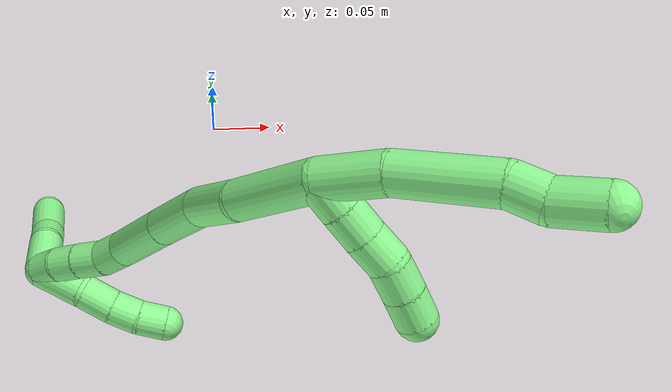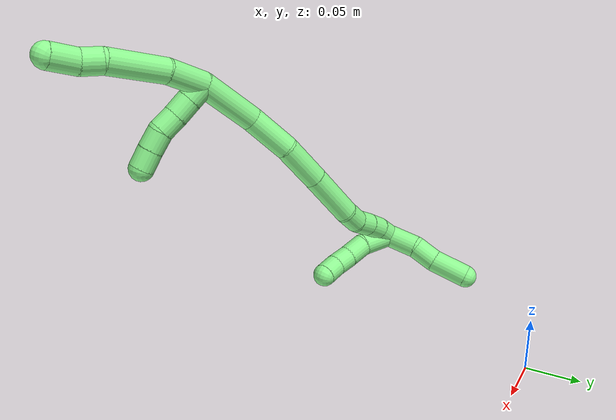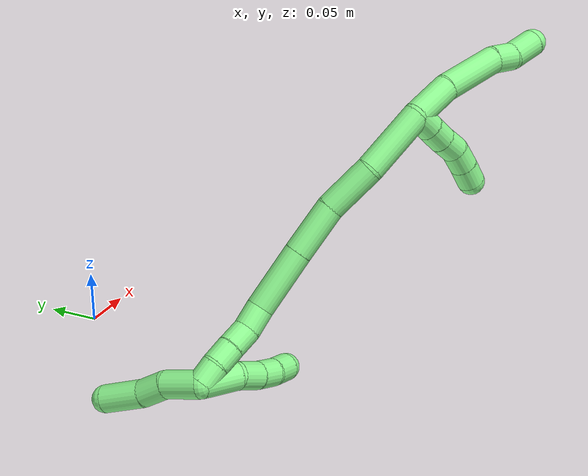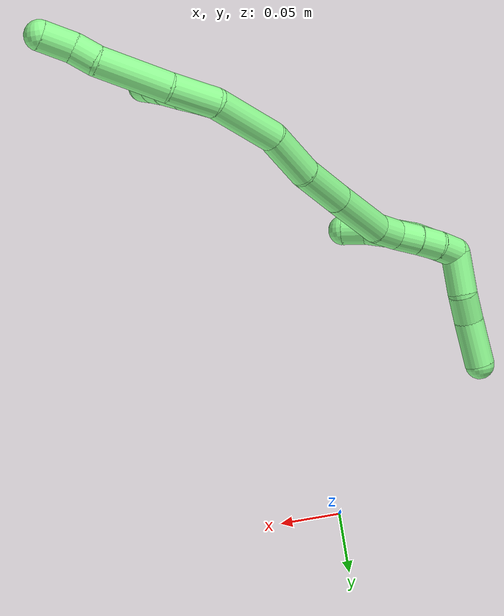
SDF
<sdf version="1.7">
 <world name="default">
  <model name="13">
   <static>0</static>
   <link name="13">
    <collision name="collision-cylinder-e_1_2_8">
     <pose>0.011287 0.014372 0.009188 -1.002 0.584556 -0.326606</pose>
     <geometry><cylinder><radius>0.0125</radius><length>0.040909</length></cylinder></geometry>
     <surface>
      <friction><ode><mu>1.16</mu><mu2>1.16</mu2><slip1>0</slip1><slip2>0</slip2></ode></friction>
      <contact><ode><kp>1e+06</kp><kd>1</kd><max_vel>0</max_vel><min_depth>0.001</min_depth></ode></contact>
     </surface>
    </collision>
    <visual name="visual-cylinder-e_1_2_8">
     <pose>0.011287 0.014372 0.009188 -1.002 0.584556 -0.326606</pose>
     <geometry><cylinder><radius>0.0125</radius><length>0.040909</length></cylinder></geometry>
     <material><ambient>0.564706 0.984314 0.572549 1</ambient></material>
    </visual>
    <collision name="collision-cylinder-e_2_8_9">
     <pose>0.042423 0.045523 0.03342 -0.839844 0.722088 -0.334035</pose>
     <geometry><cylinder><radius>0.0125</radius><length>0.060059</length></cylinder></geometry>
     <surface>
      <friction><ode><mu>1.16</mu><mu2>1.16</mu2><slip1>0</slip1><slip2>0</slip2></ode></friction>
      <contact><ode><kp>1e+06</kp><kd>1</kd><max_vel>0</max_vel><min_depth>0.001</min_depth></ode></contact>
     </surface>
    </collision>
    <visual name="visual-cylinder-e_2_8_9">
     <pose>0.042423 0.045523 0.03342 -0.839844 0.722088 -0.334035</pose>
     <geometry><cylinder><radius>0.0125</radius><length>0.060059</length></cylinder></geometry>
     <material><ambient>0.564706 0.984314 0.572549 1</ambient></material>
    </visual>
    <collision name="collision-cylinder-e_3_9_10">
     <pose>0.069757 0.065365 0.055043 -0.435858 0.800891 -0.186938</pose>
     <geometry><cylinder><radius>0.0125</radius><length>0.020854</length></cylinder></geometry>
     <surface>
      <friction><ode><mu>1.16</mu><mu2>1.16</mu2><slip1>0</slip1><slip2>0</slip2></ode></friction>
      <contact><ode><kp>1e+06</kp><kd>1</kd><max_vel>0</max_vel><min_depth>0.001</min_depth></ode></contact>
     </surface>
    </collision>
    <visual name="visual-cylinder-e_3_9_10">
     <pose>0.069757 0.065365 0.055043 -0.435858 0.800891 -0.186938</pose>
     <geometry><cylinder><radius>0.0125</radius><length>0.020854</length></cylinder></geometry>
     <material><ambient>0.564706 0.984314 0.572549 1</ambient></material>
    </visual>
    <collision name="collision-cylinder-e_4_10_6">
     <pose>0.086203 0.07672 0.068658 -0.867024 0.689172 -0.329252</pose>
     <geometry><cylinder><radius>0.0125</radius><length>0.028178</length></cylinder></geometry>
     <surface>
      <friction><ode><mu>1.16</mu><mu2>1.16</mu2><slip1>0</slip1><slip2>0</slip2></ode></friction>
      <contact><ode><kp>1e+06</kp><kd>1</kd><max_vel>0</max_vel><min_depth>0.001</min_depth></ode></contact>
     </surface>
    </collision>
    <visual name="visual-cylinder-e_4_10_6">
     <pose>0.086203 0.07672 0.068658 -0.867024 0.689172 -0.329252</pose>
     <geometry><cylinder><radius>0.0125</radius><length>0.028178</length></cylinder></geometry>
     <material><ambient>0.564706 0.984314 0.572549 1</ambient></material>
    </visual>
    <collision name="collision-cylinder-e_1_2_11">
     <pose>0.008925 -0.003558 0.002771 0.9091 1.10292 0.584003</pose>
     <geometry><cylinder><radius>0.0125</radius><length>0.02</length></cylinder></geometry>
     <surface>
      <friction><ode><mu>1.16</mu><mu2>1.16</mu2><slip1>0</slip1><slip2>0</slip2></ode></friction>
      <contact><ode><kp>1e+06</kp><kd>1</kd><max_vel>0</max_vel><min_depth>0.001</min_depth></ode></contact>
     </surface>
    </collision>
    <visual name="visual-cylinder-e_1_2_11">
     <pose>0.008925 -0.003558 0.002771 0.9091 1.10292 0.584003</pose>
     <geometry><cylinder><radius>0.0125</radius><length>0.02</length></cylinder></geometry>
     <material><ambient>0.564706 0.984314 0.572549 1</ambient></material>
    </visual>
    <collision name="collision-cylinder-e_2_11_12">
     <pose>0.026866 -0.010633 0.008063 0.948901 1.12328 0.625139</pose>
     <geometry><cylinder><radius>0.0125</radius><length>0.02</length></cylinder></geometry>
     <surface>
      <friction><ode><mu>1.16</mu><mu2>1.16</mu2><slip1>0</slip1><slip2>0</slip2></ode></friction>
      <contact><ode><kp>1e+06</kp><kd>1</kd><max_vel>0</max_vel><min_depth>0.001</min_depth></ode></contact>
     </surface>
    </collision>
    <visual name="visual-cylinder-e_2_11_12">
     <pose>0.026866 -0.010633 0.008063 0.948901 1.12328 0.625139</pose>
     <geometry><cylinder><radius>0.0125</radius><length>0.02</length></cylinder></geometry>
     <material><ambient>0.564706 0.984314 0.572549 1</ambient></material>
    </visual>
    <collision name="collision-cylinder-e_3_12_13">
     <pose>0.04497 -0.01716 0.013471 0.806359 1.14062 0.534106</pose>
     <geometry><cylinder><radius>0.0125</radius><length>0.02</length></cylinder></geometry>
     <surface>
      <friction><ode><mu>1.16</mu><mu2>1.16</mu2><slip1>0</slip1><slip2>0</slip2></ode></friction>
      <contact><ode><kp>1e+06</kp><kd>1</kd><max_vel>0</max_vel><min_depth>0.001</min_depth></ode></contact>
     </surface>
    </collision>
    <visual name="visual-cylinder-e_3_12_13">
     <pose>0.04497 -0.01716 0.013471 0.806359 1.14062 0.534106</pose>
     <geometry><cylinder><radius>0.0125</radius><length>0.02</length></cylinder></geometry>
     <material><ambient>0.564706 0.984314 0.572549 1</ambient></material>
    </visual>
    <collision name="collision-cylinder-e_4_13_14">
     <pose>0.062205 -0.025771 0.017866 1.30768 0.952093 0.752538</pose>
     <geometry><cylinder><radius>0.0125</radius><length>0.02</length></cylinder></geometry>
     <surface>
      <friction><ode><mu>1.16</mu><mu2>1.16</mu2><slip1>0</slip1><slip2>0</slip2></ode></friction>
      <contact><ode><kp>1e+06</kp><kd>1</kd><max_vel>0</max_vel><min_depth>0.001</min_depth></ode></contact>
     </surface>
    </collision>
    <visual name="visual-cylinder-e_4_13_14">
     <pose>0.062205 -0.025771 0.017866 1.30768 0.952093 0.752538</pose>
     <geometry><cylinder><radius>0.0125</radius><length>0.02</length></cylinder></geometry>
     <material><ambient>0.564706 0.984314 0.572549 1</ambient></material>
    </visual>
    <collision name="collision-cylinder-e_5_14_5">
     <pose>0.078374 -0.037235 0.020498 1.38148 0.930989 0.787081</pose>
     <geometry><cylinder><radius>0.0125</radius><length>0.02</length></cylinder></geometry>
     <surface>
      <friction><ode><mu>1.16</mu><mu2>1.16</mu2><slip1>0</slip1><slip2>0</slip2></ode></friction>
      <contact><ode><kp>1e+06</kp><kd>1</kd><max_vel>0</max_vel><min_depth>0.001</min_depth></ode></contact>
     </surface>
    </collision>
    <visual name="visual-cylinder-e_5_14_5">
     <pose>0.078374 -0.037235 0.020498 1.38148 0.930989 0.787081</pose>
     <geometry><cylinder><radius>0.0125</radius><length>0.02</length></cylinder></geometry>
     <material><ambient>0.564706 0.984314 0.572549 1</ambient></material>
    </visual>
    <collision name="collision-cylinder-e_1_2_15">
     <pose>-0.009187 -0.024482 -0.017475 2.19072 -0.296421 -0.564536</pose>
     <geometry><cylinder><radius>0.0125</radius><length>0.062902</length></cylinder></geometry>
     <surface>
      <friction><ode><mu>1.16</mu><mu2>1.16</mu2><slip1>0</slip1><slip2>0</slip2></ode></friction>
      <contact><ode><kp>1e+06</kp><kd>1</kd><max_vel>0</max_vel><min_depth>0.001</min_depth></ode></contact>
     </surface>
    </collision>
    <visual name="visual-cylinder-e_1_2_15">
     <pose>-0.009187 -0.024482 -0.017475 2.19072 -0.296421 -0.564536</pose>
     <geometry><cylinder><radius>0.0125</radius><length>0.062902</length></cylinder></geometry>
     <material><ambient>0.564706 0.984314 0.572549 1</ambient></material>
    </visual>
    <collision name="collision-cylinder-e_2_15_16">
     <pose>-0.021169 -0.065284 -0.051745 2.37057 -0.118809 -0.291037</pose>
     <geometry><cylinder><radius>0.0125</radius><length>0.047167</length></cylinder></geometry>
     <surface>
      <friction><ode><mu>1.16</mu><mu2>1.16</mu2><slip1>0</slip1><slip2>0</slip2></ode></friction>
      <contact><ode><kp>1e+06</kp><kd>1</kd><max_vel>0</max_vel><min_depth>0.001</min_depth></ode></contact>
     </surface>
    </collision>
    <visual name="visual-cylinder-e_2_15_16">
     <pose>-0.021169 -0.065284 -0.051745 2.37057 -0.118809 -0.291037</pose>
     <geometry><cylinder><radius>0.0125</radius><length>0.047167</length></cylinder></geometry>
     <material><ambient>0.564706 0.984314 0.572549 1</ambient></material>
    </visual>
    <collision name="collision-cylinder-e_3_16_17">
     <pose>-0.026552 -0.1011 -0.082009 2.17531 -0.108776 -0.206809</pose>
     <geometry><cylinder><radius>0.0125</radius><length>0.047677</length></cylinder></geometry>
     <surface>
      <friction><ode><mu>1.16</mu><mu2>1.16</mu2><slip1>0</slip1><slip2>0</slip2></ode></friction>
      <contact><ode><kp>1e+06</kp><kd>1</kd><max_vel>0</max_vel><min_depth>0.001</min_depth></ode></contact>
     </surface>
    </collision>
    <visual name="visual-cylinder-e_3_16_17">
     <pose>-0.026552 -0.1011 -0.082009 2.17531 -0.108776 -0.206809</pose>
     <geometry><cylinder><radius>0.0125</radius><length>0.047677</length></cylinder></geometry>
     <material><ambient>0.564706 0.984314 0.572549 1</ambient></material>
    </visual>
    <collision name="collision-cylinder-e_4_17_18">
     <pose>-0.03218 -0.144596 -0.111375 2.15588 -0.105211 -0.195459</pose>
     <geometry><cylinder><radius>0.0125</radius><length>0.057892</length></cylinder></geometry>
     <surface>
      <friction><ode><mu>1.16</mu><mu2>1.16</mu2><slip1>0</slip1><slip2>0</slip2></ode></friction>
      <contact><ode><kp>1e+06</kp><kd>1</kd><max_vel>0</max_vel><min_depth>0.001</min_depth></ode></contact>
     </surface>
    </collision>
    <visual name="visual-cylinder-e_4_17_18">
     <pose>-0.03218 -0.144596 -0.111375 2.15588 -0.105211 -0.195459</pose>
     <geometry><cylinder><radius>0.0125</radius><length>0.057892</length></cylinder></geometry>
     <material><ambient>0.564706 0.984314 0.572549 1</ambient></material>
    </visual>
    <collision name="collision-cylinder-e_5_18_19">
     <pose>-0.038489 -0.17849 -0.131735 1.99436 -0.292524 -0.448356</pose>
     <geometry><cylinder><radius>0.0125</radius><length>0.022676</length></cylinder></geometry>
     <surface>
      <friction><ode><mu>1.16</mu><mu2>1.16</mu2><slip1>0</slip1><slip2>0</slip2></ode></friction>
      <contact><ode><kp>1e+06</kp><kd>1</kd><max_vel>0</max_vel><min_depth>0.001</min_depth></ode></contact>
     </surface>
    </collision>
    <visual name="visual-cylinder-e_5_18_19">
     <pose>-0.038489 -0.17849 -0.131735 1.99436 -0.292524 -0.448356</pose>
     <geometry><cylinder><radius>0.0125</radius><length>0.022676</length></cylinder></geometry>
     <material><ambient>0.564706 0.984314 0.572549 1</ambient></material>
    </visual>
    <collision name="collision-cylinder-e_6_19_20">
     <pose>-0.047663 -0.196152 -0.1403 2.05691 -0.591845 -0.936742</pose>
     <geometry><cylinder><radius>0.0125</radius><length>0.021166</length></cylinder></geometry>
     <surface>
      <friction><ode><mu>1.16</mu><mu2>1.16</mu2><slip1>0</slip1><slip2>0</slip2></ode></friction>
      <contact><ode><kp>1e+06</kp><kd>1</kd><max_vel>0</max_vel><min_depth>0.001</min_depth></ode></contact>
     </surface>
    </collision>
    <visual name="visual-cylinder-e_6_19_20">
     <pose>-0.047663 -0.196152 -0.1403 2.05691 -0.591845 -0.936742</pose>
     <geometry><cylinder><radius>0.0125</radius><length>0.021166</length></cylinder></geometry>
     <material><ambient>0.564706 0.984314 0.572549 1</ambient></material>
    </visual>
    <collision name="collision-cylinder-e_7_20_21">
     <pose>-0.058693 -0.211686 -0.148552 2.0613 -0.527138 -0.845745</pose>
     <geometry><cylinder><radius>0.0125</radius><length>0.020379</length></cylinder></geometry>
     <surface>
      <friction><ode><mu>1.16</mu><mu2>1.16</mu2><slip1>0</slip1><slip2>0</slip2></ode></friction>
      <contact><ode><kp>1e+06</kp><kd>1</kd><max_vel>0</max_vel><min_depth>0.001</min_depth></ode></contact>
     </surface>
    </collision>
    <visual name="visual-cylinder-e_7_20_21">
     <pose>-0.058693 -0.211686 -0.148552 2.0613 -0.527138 -0.845745</pose>
     <geometry><cylinder><radius>0.0125</radius><length>0.020379</length></cylinder></geometry>
     <material><ambient>0.564706 0.984314 0.572549 1</ambient></material>
    </visual>
    <collision name="collision-cylinder-e_8_21_1">
     <pose>-0.067215 -0.22775 -0.15729 2.0761 -0.343994 -0.573031</pose>
     <geometry><cylinder><radius>0.0125</radius><length>0.020142</length></cylinder></geometry>
     <surface>
      <friction><ode><mu>1.16</mu><mu2>1.16</mu2><slip1>0</slip1><slip2>0</slip2></ode></friction>
      <contact><ode><kp>1e+06</kp><kd>1</kd><max_vel>0</max_vel><min_depth>0.001</min_depth></ode></contact>
     </surface>
    </collision>
    <visual name="visual-cylinder-e_8_21_1">
     <pose>-0.067215 -0.22775 -0.15729 2.0761 -0.343994 -0.573031</pose>
     <geometry><cylinder><radius>0.0125</radius><length>0.020142</length></cylinder></geometry>
     <material><ambient>0.564706 0.984314 0.572549 1</ambient></material>
    </visual>
    <collision name="collision-cylinder-e_1_1_22">
     <pose>-0.070496 -0.236503 -0.179452 3.1156 0.006559 0.494361</pose>
     <geometry><cylinder><radius>0.0125</radius><length>0.035158</length></cylinder></geometry>
     <surface>
      <friction><ode><mu>1.16</mu><mu2>1.16</mu2><slip1>0</slip1><slip2>0</slip2></ode></friction>
      <contact><ode><kp>1e+06</kp><kd>1</kd><max_vel>0</max_vel><min_depth>0.001</min_depth></ode></contact>
     </surface>
    </collision>
    <visual name="visual-cylinder-e_1_1_22">
     <pose>-0.070496 -0.236503 -0.179452 3.1156 0.006559 0.494361</pose>
     <geometry><cylinder><radius>0.0125</radius><length>0.035158</length></cylinder></geometry>
     <material><ambient>0.564706 0.984314 0.572549 1</ambient></material>
    </visual>
    <collision name="collision-cylinder-e_2_22_23">
     <pose>-0.069124 -0.24102 -0.208956 2.8136 0.099412 0.584045</pose>
     <geometry><cylinder><radius>0.0125</radius><length>0.025332</length></cylinder></geometry>
     <surface>
      <friction><ode><mu>1.16</mu><mu2>1.16</mu2><slip1>0</slip1><slip2>0</slip2></ode></friction>
      <contact><ode><kp>1e+06</kp><kd>1</kd><max_vel>0</max_vel><min_depth>0.001</min_depth></ode></contact>
     </surface>
    </collision>
    <visual name="visual-cylinder-e_2_22_23">
     <pose>-0.069124 -0.24102 -0.208956 2.8136 0.099412 0.584045</pose>
     <geometry><cylinder><radius>0.0125</radius><length>0.025332</length></cylinder></geometry>
     <material><ambient>0.564706 0.984314 0.572549 1</ambient></material>
    </visual>
    <collision name="collision-cylinder-e_3_23_4">
     <pose>-0.068034 -0.248014 -0.240423 2.99254 -0.008463 -0.113219</pose>
     <geometry><cylinder><radius>0.0125</radius><length>0.03951</length></cylinder></geometry>
     <surface>
      <friction><ode><mu>1.16</mu><mu2>1.16</mu2><slip1>0</slip1><slip2>0</slip2></ode></friction>
      <contact><ode><kp>1e+06</kp><kd>1</kd><max_vel>0</max_vel><min_depth>0.001</min_depth></ode></contact>
     </surface>
    </collision>
    <visual name="visual-cylinder-e_3_23_4">
     <pose>-0.068034 -0.248014 -0.240423 2.99254 -0.008463 -0.113219</pose>
     <geometry><cylinder><radius>0.0125</radius><length>0.03951</length></cylinder></geometry>
     <material><ambient>0.564706 0.984314 0.572549 1</ambient></material>
    </visual>
    <collision name="collision-cylinder-e_1_1_24">
     <pose>-0.05547 -0.231741 -0.153008 -0.451783 0.993577 -0.247905</pose>
     <geometry><cylinder><radius>0.0125</radius><length>0.036138</length></cylinder></geometry>
     <surface>
      <friction><ode><mu>1.16</mu><mu2>1.16</mu2><slip1>0</slip1><slip2>0</slip2></ode></friction>
      <contact><ode><kp>1e+06</kp><kd>1</kd><max_vel>0</max_vel><min_depth>0.001</min_depth></ode></contact>
     </surface>
    </collision>
    <visual name="visual-cylinder-e_1_1_24">
     <pose>-0.05547 -0.231741 -0.153008 -0.451783 0.993577 -0.247905</pose>
     <geometry><cylinder><radius>0.0125</radius><length>0.036138</length></cylinder></geometry>
     <material><ambient>0.564706 0.984314 0.572549 1</ambient></material>
    </visual>
    <collision name="collision-cylinder-e_2_24_25">
     <pose>-0.028975 -0.226863 -0.140582 -0.160062 1.26368 -0.117272</pose>
     <geometry><cylinder><radius>0.0125</radius><length>0.023822</length></cylinder></geometry>
     <surface>
      <friction><ode><mu>1.16</mu><mu2>1.16</mu2><slip1>0</slip1><slip2>0</slip2></ode></friction>
      <contact><ode><kp>1e+06</kp><kd>1</kd><max_vel>0</max_vel><min_depth>0.001</min_depth></ode></contact>
     </surface>
    </collision>
    <visual name="visual-cylinder-e_2_24_25">
     <pose>-0.028975 -0.226863 -0.140582 -0.160062 1.26368 -0.117272</pose>
     <geometry><cylinder><radius>0.0125</radius><length>0.023822</length></cylinder></geometry>
     <material><ambient>0.564706 0.984314 0.572549 1</ambient></material>
    </visual>
    <collision name="collision-cylinder-e_3_25_26">
     <pose>-0.008192 -0.224508 -0.134207 -0.563001 1.23078 -0.403324</pose>
     <geometry><cylinder><radius>0.0125</radius><length>0.020005</length></cylinder></geometry>
     <surface>
      <friction><ode><mu>1.16</mu><mu2>1.16</mu2><slip1>0</slip1><slip2>0</slip2></ode></friction>
      <contact><ode><kp>1e+06</kp><kd>1</kd><max_vel>0</max_vel><min_depth>0.001</min_depth></ode></contact>
     </surface>
    </collision>
    <visual name="visual-cylinder-e_3_25_26">
     <pose>-0.008192 -0.224508 -0.134207 -0.563001 1.23078 -0.403324</pose>
     <geometry><cylinder><radius>0.0125</radius><length>0.020005</length></cylinder></geometry>
     <material><ambient>0.564706 0.984314 0.572549 1</ambient></material>
    </visual>
    <collision name="collision-cylinder-e_4_26_3">
     <pose>0.010775 -0.219978 -0.130028 -1.11241 1.25967 -0.850877</pose>
     <geometry><cylinder><radius>0.0125</radius><length>0.020035</length></cylinder></geometry>
     <surface>
      <friction><ode><mu>1.16</mu><mu2>1.16</mu2><slip1>0</slip1><slip2>0</slip2></ode></friction>
      <contact><ode><kp>1e+06</kp><kd>1</kd><max_vel>0</max_vel><min_depth>0.001</min_depth></ode></contact>
     </surface>
    </collision>
    <visual name="visual-cylinder-e_4_26_3">
     <pose>0.010775 -0.219978 -0.130028 -1.11241 1.25967 -0.850877</pose>
     <geometry><cylinder><radius>0.0125</radius><length>0.020035</length></cylinder></geometry>
     <material><ambient>0.564706 0.984314 0.572549 1</ambient></material>
    </visual>
    <collision name="collision-sphere-3">
     <pose>0.020311 -0.217228 -0.128671 0 -0 0</pose>
     <geometry><sphere><radius>0.0125</radius></sphere></geometry>
     <surface>
      <friction><ode><mu>1.16</mu><mu2>1.16</mu2><slip1>0</slip1><slip2>0</slip2></ode></friction>
      <contact><ode><kp>1e+06</kp><kd>1</kd><max_vel>0</max_vel><min_depth>0.001</min_depth></ode></contact>
     </surface>
    </collision>
    <visual name="visual-sphere-3">
     <pose>0.020311 -0.217228 -0.128671 0 -0 0</pose>
     <geometry><sphere><radius>0.0125</radius></sphere></geometry>
     <material><ambient>0.564706 0.984314 0.572549 1</ambient></material>
    </visual>
    <collision name="collision-sphere-26">
     <pose>0.001238 -0.222728 -0.131386 0 -0 0</pose>
     <geometry><sphere><radius>0.0125</radius></sphere></geometry>
     <surface>
      <friction><ode><mu>1.16</mu><mu2>1.16</mu2><slip1>0</slip1><slip2>0</slip2></ode></friction>
      <contact><ode><kp>1e+06</kp><kd>1</kd><max_vel>0</max_vel><min_depth>0.001</min_depth></ode></contact>
     </surface>
    </collision>
    <visual name="visual-sphere-26">
     <pose>0.001238 -0.222728 -0.131386 0 -0 0</pose>
     <geometry><sphere><radius>0.0125</radius></sphere></geometry>
     <material><ambient>0.564706 0.984314 0.572549 1</ambient></material>
    </visual>
    <collision name="collision-sphere-25">
     <pose>-0.017622 -0.226289 -0.137028 0 -0 0</pose>
     <geometry><sphere><radius>0.0125</radius></sphere></geometry>
     <surface>
      <friction><ode><mu>1.16</mu><mu2>1.16</mu2><slip1>0</slip1><slip2>0</slip2></ode></friction>
      <contact><ode><kp>1e+06</kp><kd>1</kd><max_vel>0</max_vel><min_depth>0.001</min_depth></ode></contact>
     </surface>
    </collision>
    <visual name="visual-sphere-25">
     <pose>-0.017622 -0.226289 -0.137028 0 -0 0</pose>
     <geometry><sphere><radius>0.0125</radius></sphere></geometry>
     <material><ambient>0.564706 0.984314 0.572549 1</ambient></material>
    </visual>
    <collision name="collision-sphere-24">
     <pose>-0.040329 -0.227437 -0.144137 0 -0 0</pose>
     <geometry><sphere><radius>0.0125</radius></sphere></geometry>
     <surface>
      <friction><ode><mu>1.16</mu><mu2>1.16</mu2><slip1>0</slip1><slip2>0</slip2></ode></friction>
      <contact><ode><kp>1e+06</kp><kd>1</kd><max_vel>0</max_vel><min_depth>0.001</min_depth></ode></contact>
     </surface>
    </collision>
    <visual name="visual-sphere-24">
     <pose>-0.040329 -0.227437 -0.144137 0 -0 0</pose>
     <geometry><sphere><radius>0.0125</radius></sphere></geometry>
     <material><ambient>0.564706 0.984314 0.572549 1</ambient></material>
    </visual>
    <collision name="collision-sphere-4">
     <pose>-0.068201 -0.250947 -0.259958 0 -0 0</pose>
     <geometry><sphere><radius>0.0125</radius></sphere></geometry>
     <surface>
      <friction><ode><mu>1.16</mu><mu2>1.16</mu2><slip1>0</slip1><slip2>0</slip2></ode></friction>
      <contact><ode><kp>1e+06</kp><kd>1</kd><max_vel>0</max_vel><min_depth>0.001</min_depth></ode></contact>
     </surface>
    </collision>
    <visual name="visual-sphere-4">
     <pose>-0.068201 -0.250947 -0.259958 0 -0 0</pose>
     <geometry><sphere><radius>0.0125</radius></sphere></geometry>
     <material><ambient>0.564706 0.984314 0.572549 1</ambient></material>
    </visual>
    <collision name="collision-sphere-23">
     <pose>-0.067867 -0.24508 -0.220887 0 -0 0</pose>
     <geometry><sphere><radius>0.0125</radius></sphere></geometry>
     <surface>
      <friction><ode><mu>1.16</mu><mu2>1.16</mu2><slip1>0</slip1><slip2>0</slip2></ode></friction>
      <contact><ode><kp>1e+06</kp><kd>1</kd><max_vel>0</max_vel><min_depth>0.001</min_depth></ode></contact>
     </surface>
    </collision>
    <visual name="visual-sphere-23">
     <pose>-0.067867 -0.24508 -0.220887 0 -0 0</pose>
     <geometry><sphere><radius>0.0125</radius></sphere></geometry>
     <material><ambient>0.564706 0.984314 0.572549 1</ambient></material>
    </visual>
    <collision name="collision-sphere-22">
     <pose>-0.070381 -0.23696 -0.197024 0 -0 0</pose>
     <geometry><sphere><radius>0.0125</radius></sphere></geometry>
     <surface>
      <friction><ode><mu>1.16</mu><mu2>1.16</mu2><slip1>0</slip1><slip2>0</slip2></ode></friction>
      <contact><ode><kp>1e+06</kp><kd>1</kd><max_vel>0</max_vel><min_depth>0.001</min_depth></ode></contact>
     </surface>
    </collision>
    <visual name="visual-sphere-22">
     <pose>-0.070381 -0.23696 -0.197024 0 -0 0</pose>
     <geometry><sphere><radius>0.0125</radius></sphere></geometry>
     <material><ambient>0.564706 0.984314 0.572549 1</ambient></material>
    </visual>
    <collision name="collision-sphere-1">
     <pose>-0.070612 -0.236046 -0.161879 0 -0 0</pose>
     <geometry><sphere><radius>0.0125</radius></sphere></geometry>
     <surface>
      <friction><ode><mu>1.16</mu><mu2>1.16</mu2><slip1>0</slip1><slip2>0</slip2></ode></friction>
      <contact><ode><kp>1e+06</kp><kd>1</kd><max_vel>0</max_vel><min_depth>0.001</min_depth></ode></contact>
     </surface>
    </collision>
    <visual name="visual-sphere-1">
     <pose>-0.070612 -0.236046 -0.161879 0 -0 0</pose>
     <geometry><sphere><radius>0.0125</radius></sphere></geometry>
     <material><ambient>0.564706 0.984314 0.572549 1</ambient></material>
    </visual>
    <collision name="collision-sphere-21">
     <pose>-0.063819 -0.219454 -0.1527 0 -0 0</pose>
     <geometry><sphere><radius>0.0125</radius></sphere></geometry>
     <surface>
      <friction><ode><mu>1.16</mu><mu2>1.16</mu2><slip1>0</slip1><slip2>0</slip2></ode></friction>
      <contact><ode><kp>1e+06</kp><kd>1</kd><max_vel>0</max_vel><min_depth>0.001</min_depth></ode></contact>
     </surface>
    </collision>
    <visual name="visual-sphere-21">
     <pose>-0.063819 -0.219454 -0.1527 0 -0 0</pose>
     <geometry><sphere><radius>0.0125</radius></sphere></geometry>
     <material><ambient>0.564706 0.984314 0.572549 1</ambient></material>
    </visual>
    <collision name="collision-sphere-11">
     <pose>0.017851 -0.007116 0.005542 0 -0 0</pose>
     <geometry><sphere><radius>0.0125</radius></sphere></geometry>
     <surface>
      <friction><ode><mu>1.16</mu><mu2>1.16</mu2><slip1>0</slip1><slip2>0</slip2></ode></friction>
      <contact><ode><kp>1e+06</kp><kd>1</kd><max_vel>0</max_vel><min_depth>0.001</min_depth></ode></contact>
     </surface>
    </collision>
    <visual name="visual-sphere-11">
     <pose>0.017851 -0.007116 0.005542 0 -0 0</pose>
     <geometry><sphere><radius>0.0125</radius></sphere></geometry>
     <material><ambient>0.564706 0.984314 0.572549 1</ambient></material>
    </visual>
    <collision name="collision-sphere-6">
     <pose>0.095162 0.08501 0.075695 0 -0 0</pose>
     <geometry><sphere><radius>0.0125</radius></sphere></geometry>
     <surface>
      <friction><ode><mu>1.16</mu><mu2>1.16</mu2><slip1>0</slip1><slip2>0</slip2></ode></friction>
      <contact><ode><kp>1e+06</kp><kd>1</kd><max_vel>0</max_vel><min_depth>0.001</min_depth></ode></contact>
     </surface>
    </collision>
    <visual name="visual-sphere-6">
     <pose>0.095162 0.08501 0.075695 0 -0 0</pose>
     <geometry><sphere><radius>0.0125</radius></sphere></geometry>
     <material><ambient>0.564706 0.984314 0.572549 1</ambient></material>
    </visual>
    <collision name="collision-sphere-10">
     <pose>0.077244 0.06843 0.061622 0 -0 0</pose>
     <geometry><sphere><radius>0.0125</radius></sphere></geometry>
     <surface>
      <friction><ode><mu>1.16</mu><mu2>1.16</mu2><slip1>0</slip1><slip2>0</slip2></ode></friction>
      <contact><ode><kp>1e+06</kp><kd>1</kd><max_vel>0</max_vel><min_depth>0.001</min_depth></ode></contact>
     </surface>
    </collision>
    <visual name="visual-sphere-10">
     <pose>0.077244 0.06843 0.061622 0 -0 0</pose>
     <geometry><sphere><radius>0.0125</radius></sphere></geometry>
     <material><ambient>0.564706 0.984314 0.572549 1</ambient></material>
    </visual>
    <collision name="collision-sphere-9">
     <pose>0.062271 0.062301 0.048464 0 -0 0</pose>
     <geometry><sphere><radius>0.0125</radius></sphere></geometry>
     <surface>
      <friction><ode><mu>1.16</mu><mu2>1.16</mu2><slip1>0</slip1><slip2>0</slip2></ode></friction>
      <contact><ode><kp>1e+06</kp><kd>1</kd><max_vel>0</max_vel><min_depth>0.001</min_depth></ode></contact>
     </surface>
    </collision>
    <visual name="visual-sphere-9">
     <pose>0.062271 0.062301 0.048464 0 -0 0</pose>
     <geometry><sphere><radius>0.0125</radius></sphere></geometry>
     <material><ambient>0.564706 0.984314 0.572549 1</ambient></material>
    </visual>
    <collision name="collision-sphere-2">
     <geometry><sphere><radius>0.0125</radius></sphere></geometry>
     <surface>
      <friction><ode><mu>1.16</mu><mu2>1.16</mu2><slip1>0</slip1><slip2>0</slip2></ode></friction>
      <contact><ode><kp>1e+06</kp><kd>1</kd><max_vel>0</max_vel><min_depth>0.001</min_depth></ode></contact>
     </surface>
    </collision>
    <visual name="visual-sphere-2">
     <geometry><sphere><radius>0.0125</radius></sphere></geometry>
     <material><ambient>0.564706 0.984314 0.572549 1</ambient></material>
    </visual>
    <collision name="collision-sphere-19">
     <pose>-0.041759 -0.188387 -0.136197 0 -0 0</pose>
     <geometry><sphere><radius>0.0125</radius></sphere></geometry>
     <surface>
      <friction><ode><mu>1.16</mu><mu2>1.16</mu2><slip1>0</slip1><slip2>0</slip2></ode></friction>
      <contact><ode><kp>1e+06</kp><kd>1</kd><max_vel>0</max_vel><min_depth>0.001</min_depth></ode></contact>
     </surface>
    </collision>
    <visual name="visual-sphere-19">
     <pose>-0.041759 -0.188387 -0.136197 0 -0 0</pose>
     <geometry><sphere><radius>0.0125</radius></sphere></geometry>
     <material><ambient>0.564706 0.984314 0.572549 1</ambient></material>
    </visual>
    <collision name="collision-sphere-8">
     <pose>0.022575 0.028745 0.018376 0 -0 0</pose>
     <geometry><sphere><radius>0.0125</radius></sphere></geometry>
     <surface>
      <friction><ode><mu>1.16</mu><mu2>1.16</mu2><slip1>0</slip1><slip2>0</slip2></ode></friction>
      <contact><ode><kp>1e+06</kp><kd>1</kd><max_vel>0</max_vel><min_depth>0.001</min_depth></ode></contact>
     </surface>
    </collision>
    <visual name="visual-sphere-8">
     <pose>0.022575 0.028745 0.018376 0 -0 0</pose>
     <geometry><sphere><radius>0.0125</radius></sphere></geometry>
     <material><ambient>0.564706 0.984314 0.572549 1</ambient></material>
    </visual>
    <collision name="collision-sphere-12">
     <pose>0.035881 -0.01415 0.010584 0 -0 0</pose>
     <geometry><sphere><radius>0.0125</radius></sphere></geometry>
     <surface>
      <friction><ode><mu>1.16</mu><mu2>1.16</mu2><slip1>0</slip1><slip2>0</slip2></ode></friction>
      <contact><ode><kp>1e+06</kp><kd>1</kd><max_vel>0</max_vel><min_depth>0.001</min_depth></ode></contact>
     </surface>
    </collision>
    <visual name="visual-sphere-12">
     <pose>0.035881 -0.01415 0.010584 0 -0 0</pose>
     <geometry><sphere><radius>0.0125</radius></sphere></geometry>
     <material><ambient>0.564706 0.984314 0.572549 1</ambient></material>
    </visual>
    <collision name="collision-sphere-13">
     <pose>0.054059 -0.02017 0.016357 0 -0 0</pose>
     <geometry><sphere><radius>0.0125</radius></sphere></geometry>
     <surface>
      <friction><ode><mu>1.16</mu><mu2>1.16</mu2><slip1>0</slip1><slip2>0</slip2></ode></friction>
      <contact><ode><kp>1e+06</kp><kd>1</kd><max_vel>0</max_vel><min_depth>0.001</min_depth></ode></contact>
     </surface>
    </collision>
    <visual name="visual-sphere-13">
     <pose>0.054059 -0.02017 0.016357 0 -0 0</pose>
     <geometry><sphere><radius>0.0125</radius></sphere></geometry>
     <material><ambient>0.564706 0.984314 0.572549 1</ambient></material>
    </visual>
    <collision name="collision-sphere-14">
     <pose>0.070352 -0.031371 0.019374 0 -0 0</pose>
     <geometry><sphere><radius>0.0125</radius></sphere></geometry>
     <surface>
      <friction><ode><mu>1.16</mu><mu2>1.16</mu2><slip1>0</slip1><slip2>0</slip2></ode></friction>
      <contact><ode><kp>1e+06</kp><kd>1</kd><max_vel>0</max_vel><min_depth>0.001</min_depth></ode></contact>
     </surface>
    </collision>
    <visual name="visual-sphere-14">
     <pose>0.070352 -0.031371 0.019374 0 -0 0</pose>
     <geometry><sphere><radius>0.0125</radius></sphere></geometry>
     <material><ambient>0.564706 0.984314 0.572549 1</ambient></material>
    </visual>
    <collision name="collision-sphere-5">
     <pose>0.086396 -0.043098 0.021621 0 -0 0</pose>
     <geometry><sphere><radius>0.0125</radius></sphere></geometry>
     <surface>
      <friction><ode><mu>1.16</mu><mu2>1.16</mu2><slip1>0</slip1><slip2>0</slip2></ode></friction>
      <contact><ode><kp>1e+06</kp><kd>1</kd><max_vel>0</max_vel><min_depth>0.001</min_depth></ode></contact>
     </surface>
    </collision>
    <visual name="visual-sphere-5">
     <pose>0.086396 -0.043098 0.021621 0 -0 0</pose>
     <geometry><sphere><radius>0.0125</radius></sphere></geometry>
     <material><ambient>0.564706 0.984314 0.572549 1</ambient></material>
    </visual>
    <collision name="collision-sphere-15">
     <pose>-0.018374 -0.048965 -0.034951 0 -0 0</pose>
     <geometry><sphere><radius>0.0125</radius></sphere></geometry>
     <surface>
      <friction><ode><mu>1.16</mu><mu2>1.16</mu2><slip1>0</slip1><slip2>0</slip2></ode></friction>
      <contact><ode><kp>1e+06</kp><kd>1</kd><max_vel>0</max_vel><min_depth>0.001</min_depth></ode></contact>
     </surface>
    </collision>
    <visual name="visual-sphere-15">
     <pose>-0.018374 -0.048965 -0.034951 0 -0 0</pose>
     <geometry><sphere><radius>0.0125</radius></sphere></geometry>
     <material><ambient>0.564706 0.984314 0.572549 1</ambient></material>
    </visual>
    <collision name="collision-sphere-16">
     <pose>-0.023964 -0.081602 -0.06854 0 -0 0</pose>
     <geometry><sphere><radius>0.0125</radius></sphere></geometry>
     <surface>
      <friction><ode><mu>1.16</mu><mu2>1.16</mu2><slip1>0</slip1><slip2>0</slip2></ode></friction>
      <contact><ode><kp>1e+06</kp><kd>1</kd><max_vel>0</max_vel><min_depth>0.001</min_depth></ode></contact>
     </surface>
    </collision>
    <visual name="visual-sphere-16">
     <pose>-0.023964 -0.081602 -0.06854 0 -0 0</pose>
     <geometry><sphere><radius>0.0125</radius></sphere></geometry>
     <material><ambient>0.564706 0.984314 0.572549 1</ambient></material>
    </visual>
    <collision name="collision-sphere-17">
     <pose>-0.02914 -0.120598 -0.095477 0 -0 0</pose>
     <geometry><sphere><radius>0.0125</radius></sphere></geometry>
     <surface>
      <friction><ode><mu>1.16</mu><mu2>1.16</mu2><slip1>0</slip1><slip2>0</slip2></ode></friction>
      <contact><ode><kp>1e+06</kp><kd>1</kd><max_vel>0</max_vel><min_depth>0.001</min_depth></ode></contact>
     </surface>
    </collision>
    <visual name="visual-sphere-17">
     <pose>-0.02914 -0.120598 -0.095477 0 -0 0</pose>
     <geometry><sphere><radius>0.0125</radius></sphere></geometry>
     <material><ambient>0.564706 0.984314 0.572549 1</ambient></material>
    </visual>
    <collision name="collision-sphere-18">
     <pose>-0.03522 -0.168593 -0.127273 0 -0 0</pose>
     <geometry><sphere><radius>0.0125</radius></sphere></geometry>
     <surface>
      <friction><ode><mu>1.16</mu><mu2>1.16</mu2><slip1>0</slip1><slip2>0</slip2></ode></friction>
      <contact><ode><kp>1e+06</kp><kd>1</kd><max_vel>0</max_vel><min_depth>0.001</min_depth></ode></contact>
     </surface>
    </collision>
    <visual name="visual-sphere-18">
     <pose>-0.03522 -0.168593 -0.127273 0 -0 0</pose>
     <geometry><sphere><radius>0.0125</radius></sphere></geometry>
     <material><ambient>0.564706 0.984314 0.572549 1</ambient></material>
    </visual>
    <collision name="collision-sphere-20">
     <pose>-0.053567 -0.203918 -0.144403 0 -0 0</pose>
     <geometry><sphere><radius>0.0125</radius></sphere></geometry>
     <surface>
      <friction><ode><mu>1.16</mu><mu2>1.16</mu2><slip1>0</slip1><slip2>0</slip2></ode></friction>
      <contact><ode><kp>1e+06</kp><kd>1</kd><max_vel>0</max_vel><min_depth>0.001</min_depth></ode></contact>
     </surface>
    </collision>
    <visual name="visual-sphere-20">
     <pose>-0.053567 -0.203918 -0.144403 0 -0 0</pose>
     <geometry><sphere><radius>0.0125</radius></sphere></geometry>
     <material><ambient>0.564706 0.984314 0.572549 1</ambient></material>
    </visual>
    <inertial>
     <pose>-0.009836 -0.102464 -0.072801 0 -0 0</pose>
     <mass>0.75</mass>
     <inertia><ixx>9.3e-05</ixx><ixy>0</ixy><ixz>0</ixz><iyy>-4.7e-05</iyy><iyz>0</iyz><izz>7e-06</izz></inertia>
    </inertial>
   </link>
   <pose>0.049676 -0.316457 0.246363 1.323 0.508894 -0.108191</pose>
  </model>
 </world>
</sdf>
